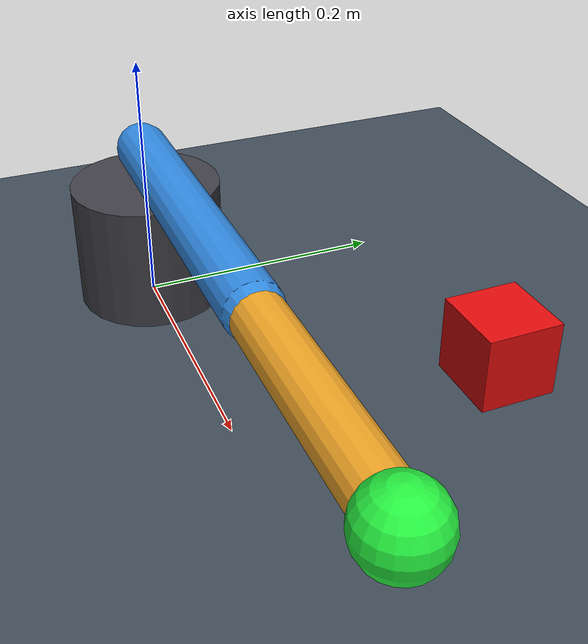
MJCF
<mujoco model="sight2servo">
  <compiler angle="radian"/>

  <option
    timestep="0.002"
    gravity="0 0 -9.81"
  />

  <worldbody>
    <geom
      name="ground"
      type="plane"
      size="0.6 0.6 0.01"
      rgba="0.25 0.30 0.35 1"
    />

    <body name="base" pos="0 0 0">
      <geom
        name="base_geom"
        type="cylinder"
        pos="0 0 0.05"
        size="0.06 0.05"
        rgba="0.25 0.25 0.28 1"
      />
    <body name="target" pos="0.22 0.20 0.03">
        <geom
            name="target_geom"
            type="box"
            size="0.03 0.03 0.03"
            rgba="0.90 0.05 0.05 1"
        />
        </body>

        <camera
        name="overhead"
        pos="0 0 1.2"
        xyaxes="1 0 0  0 1 0"
        fovy="50"
    />
      <body name="link_1" pos="0 0 0.13">
        <joint
            name="shoulder"
            type="hinge"
            axis="0 0 1"
            limited="true"
            range="-2.967 2.967"
        />
        <geom
            name="link_1_geom"
            type="capsule"
            fromto="0 0 0  0.25 0 0"
            size="0.02"
            rgba="0.20 0.55 0.90 1"
        />
        <body name="link_2" pos="0.25 0 0">
            <joint
                name="elbow"
                type="hinge"
                axis="0 0 1"
                limited="true"
                range="-2.967 2.967"
            />

            <geom
                name="link_2_geom"
                type="capsule"
                fromto="0 0 0  0.18 0 0"
                size="0.018"
                rgba="0.95 0.65 0.15 1"
            />

            <site
                name="end_effector"
                pos="0.18 0 0"
                size="0.025"
                rgba="0.15 0.95 0.25 1"
            />
            </body>
        </body>
    </body>
  </worldbody>
  <contact>
    <exclude body1="link_1" body2="link_2"/>
</contact>
    <actuator>
    <motor
        name="shoulder_motor"
        joint="shoulder"
        gear="1"
        ctrllimited="true"
        ctrlrange="-0.2 0.2"
    />

    <motor
        name="elbow_motor"
        joint="elbow"
        gear="1"
        ctrllimited="true"
        ctrlrange="-0.2 0.2"
    />
    </actuator>
</mujoco>
